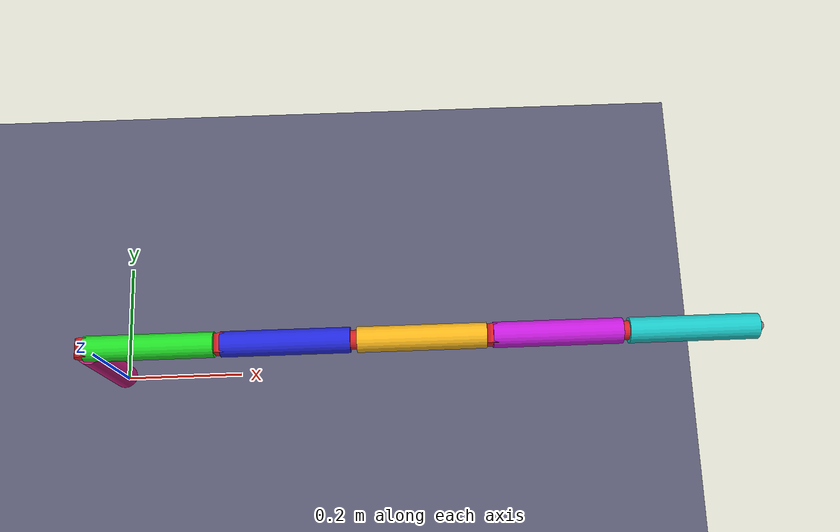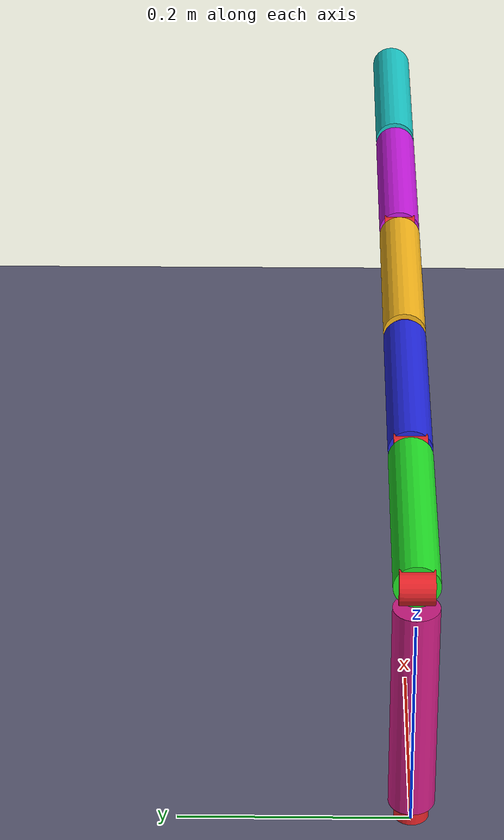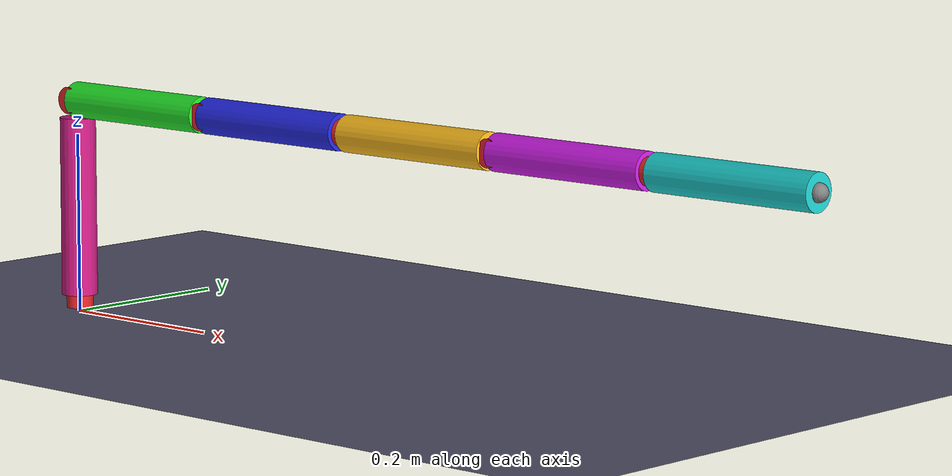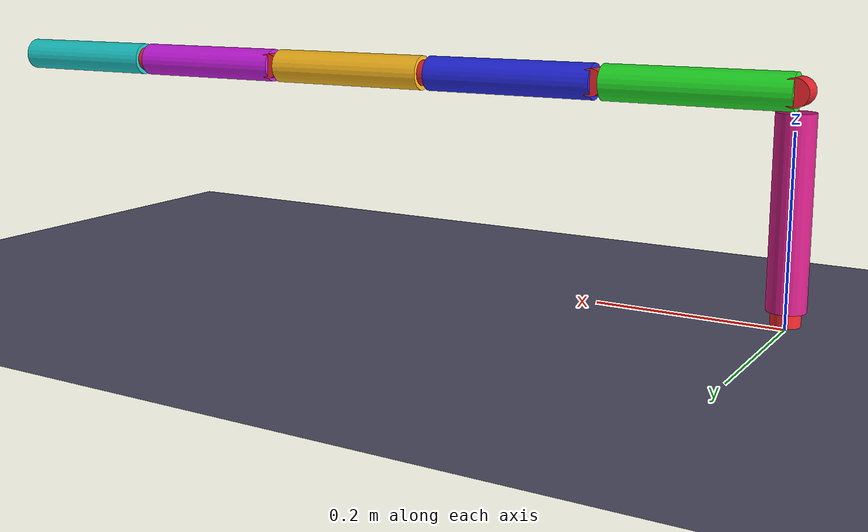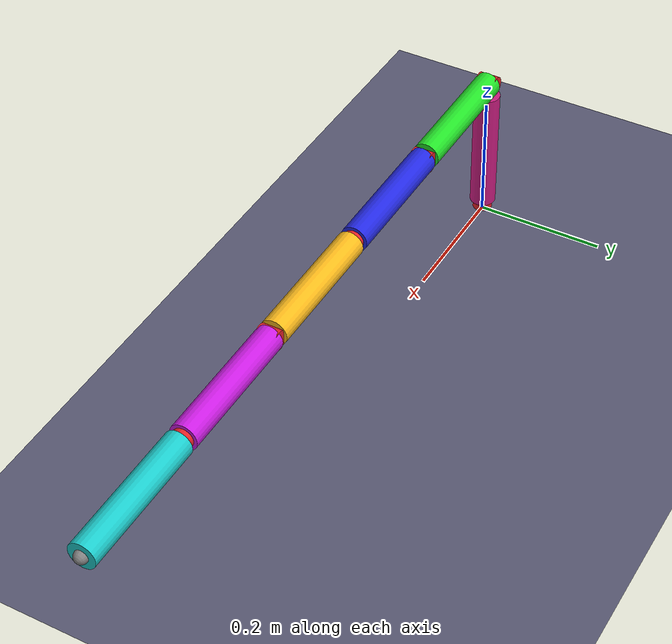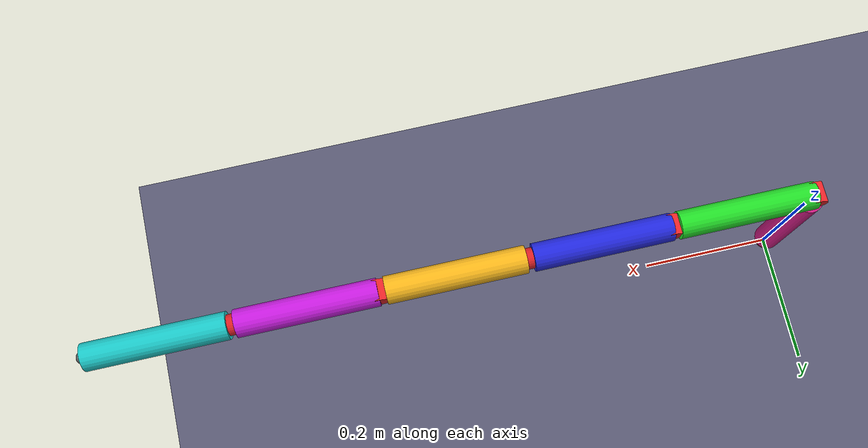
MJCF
<?xml version='1.0' encoding='UTF-8'?>
<mujoco>

    <option timestep="0.001"/>
    <option gravity="0 0 0"/>

    <asset>
        <texture type="skybox" builtin="gradient" rgb1="1 1 1" rgb2="0.5 0.5 0.8" width="265" height="256"/>
        <texture name="grid" type="2d" builtin="checker" rgb1="0.1 0.1 0.1" rgb2="0.6 0.6 0.8" width="300" height="300"/>
        <material name="grid" texture="grid" texrepeat="10 10" reflectance="0.2"/>
    </asset>

    <worldbody>
        <light pos="0 0 10"/>
        <geom type="plane" size="1 1 0.1" material="grid"/>

        <body name="ABCDEF" pos="0 0 0" euler="0 0 0">
            <joint name="joint A" type="hinge" axis="0 0 1"  limited="true" range="-3.14 3.14"/>
            <geom name="point A" type="cylinder" pos="0 0 0.02" size="0.015 0.015" rgba="0.89 0.14 0.16 0.9"/>
            <geom name="link A" type="cylinder" pos="0 0 0.12" size="0.02 0.1" rgba="0.80 0.11 0.51 0.9" euler="0 0 0"/>

            <body name="BCDEF" pos="0 0 0.24" euler="90 0 0">
                <joint name="joint B" type="hinge" axis="0 0 1" limited="true" range="-3.14 3.14" />
                <geom name="point B" type="cylinder" pos="0 0 0" size="0.015 0.015" rgba="0.89 0.14 0.16 0.9" euler="0 0 0" contype="0"/>
                <geom name="link B" type="cylinder" pos="0.1 0 0" size="0.02 0.1" rgba="0.14 0.89 0.16 0.9" euler="0 90 0"/>

                <body name="CDEF" pos="0.21 0 0" euler="0 0 0">
                    <joint name="joint C" type="hinge" axis="0 0 1" limited="true" range="-3.14 3.14" />
                    <geom name="point C" type="cylinder" pos="0 0 0" size="0.015 0.015" rgba="0.89 0.14 0.16 0.9" euler="0 0 0" contype="0"/>
                    <geom name="link C" type="cylinder" pos="0.1 0 0" size="0.02 0.1" rgba="0.14 0.16 0.89 0.9" euler="0 90 0"/>

                    <body name="DEF" pos="0.21 0 0" euler="0 90 90">
                        <joint name="joint D" type="hinge" axis="0 0 1" limited="true" range="-3.14 3.14"/>
                        <geom name="point D" type="cylinder" pos="0 0 0" size="0.015 0.015" rgba="0.89 0.14 0.16 0.9" euler="0 0 0" contype="0"/>
                        <geom name="link D" type="cylinder" pos="0 0 0.1" size="0.02 0.1" rgba="0.988 0.73 0.11 0.9" euler="0 0 0"/>

                        <body name="EF" pos="0 0 0.21" euler="-90 0 -90">
                            <joint name="joint E" type="hinge" axis="0 0 1" limited="true" range="-3.14 3.14"/>
                            <geom name="point E" type="cylinder" pos="0 0 0" size="0.015 0.015" rgba="0.89 0.14 0.16 0.9" euler="0 0 0" contype="0"/>
                            <geom name="link E" type="cylinder" pos="0.1 0 0" size="0.02 0.1" rgba="0.80 0.11 0.89 0.9" euler="0 90 0"/>

                            <body name="F" pos="0.21 0 0" euler="0 90 90">
                                <joint name="joint F" type="hinge" axis="0 0 1" limited="true" range="-3.14 3.14"/>
                                <geom name="point F" type="cylinder" pos="0 0 0" size="0.015 0.015" rgba="0.89 0.14 0.16 0.9" euler="0 0 0" contype="0"/>
                                <geom name="link F" type="cylinder" pos="0 0 0.1" size="0.02 0.1" rgba="0.11 0.8 0.8 0.9" euler="0 0 90"/>
                                <site name="sP" size="0.01" pos="0 0 0.2"/>
                            </body>

                        </body>

                    </body>

                </body>

            </body>

        </body>

    </worldbody>

    <actuator>
        <position name="joint A" joint="joint A" kp="5" dampratio="0.5" ctrllimited="true" ctrlrange="-3.14 3.14"/>
        <position name="joint B" joint="joint B" kp="5" dampratio="0.5" ctrllimited="true" ctrlrange="-3.14 3.14"/>
        <position name="joint C" joint="joint C" kp="5" dampratio="0.5" ctrllimited="true" ctrlrange="-3.14 3.14"/>
        <position name="joint D" joint="joint D" kp="5" dampratio="0.5" ctrllimited="true" ctrlrange="-3.14 3.14"/>
        <position name="joint E" joint="joint E" kp="5" dampratio="0.5" ctrllimited="true" ctrlrange="-3.14 3.14"/>
        <position name="joint F" joint="joint F" kp="5" dampratio="0.5" ctrllimited="true" ctrlrange="-3.14 3.14"/>
    </actuator>

    <sensor>
        <framepos objtype="site" objname="sP"/>
    </sensor>

</mujoco>
